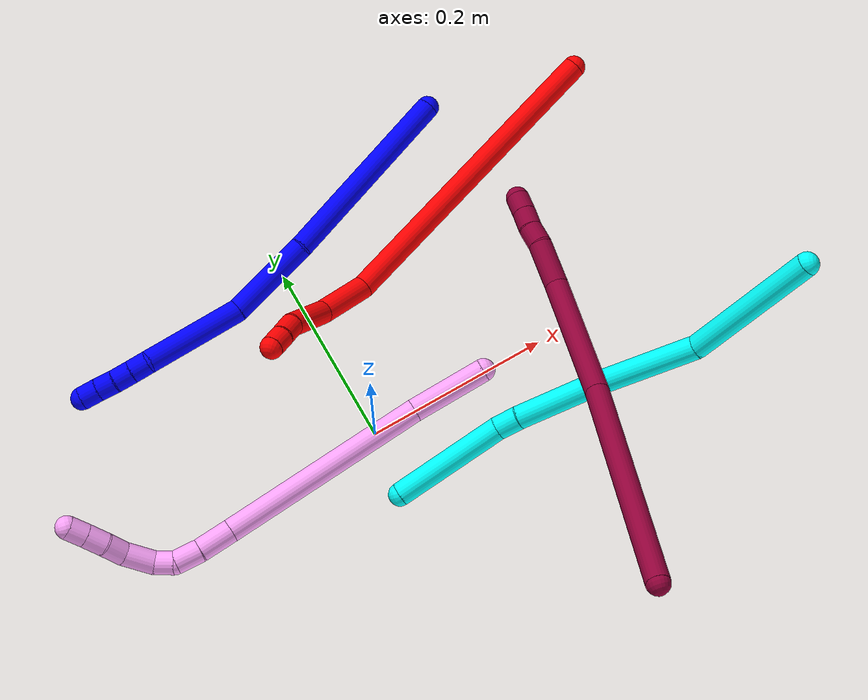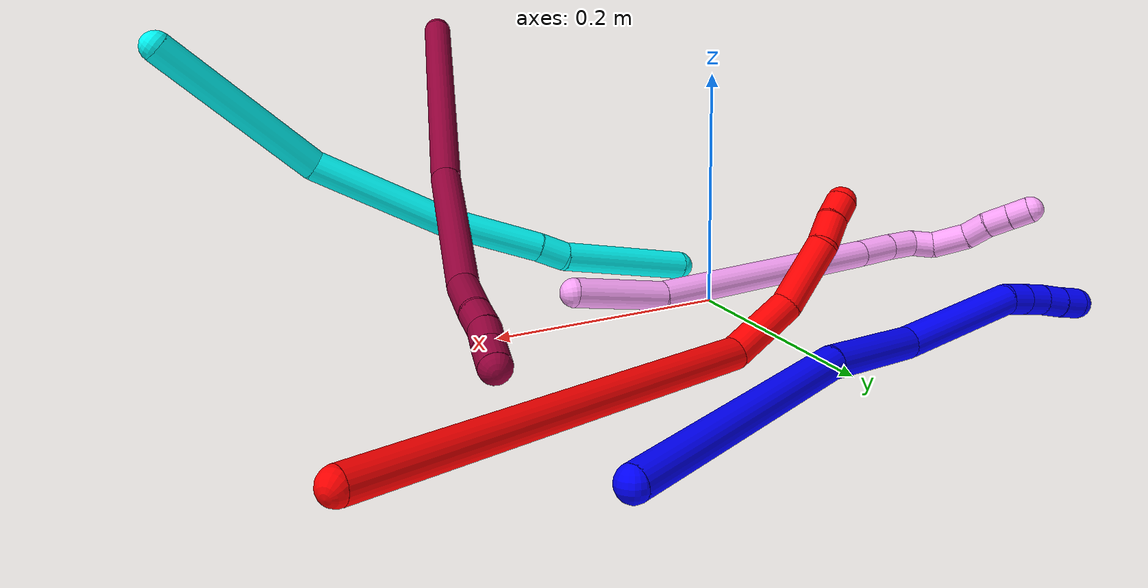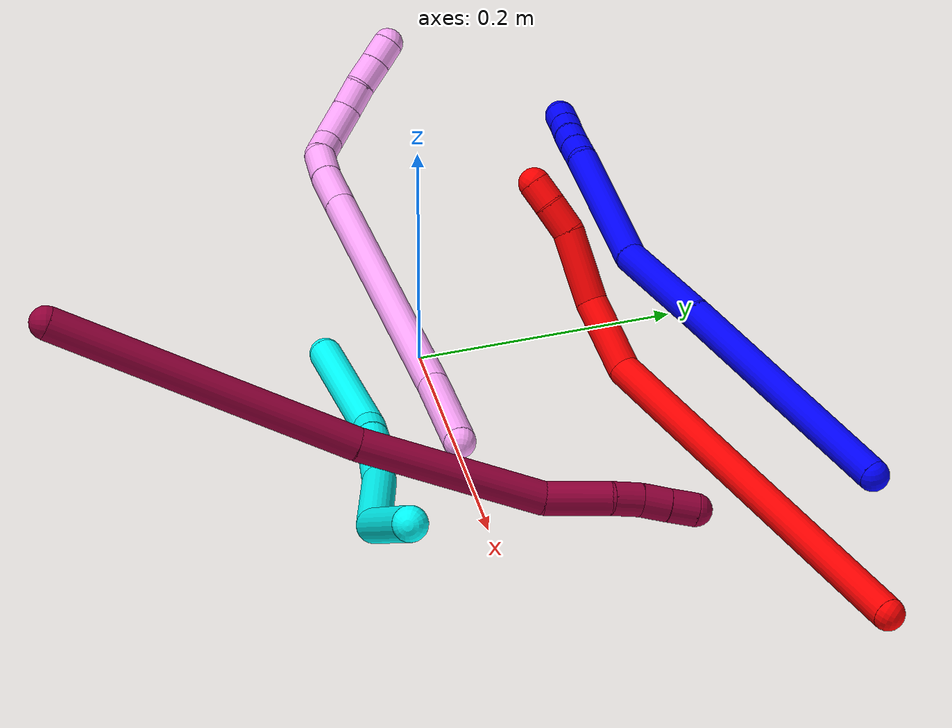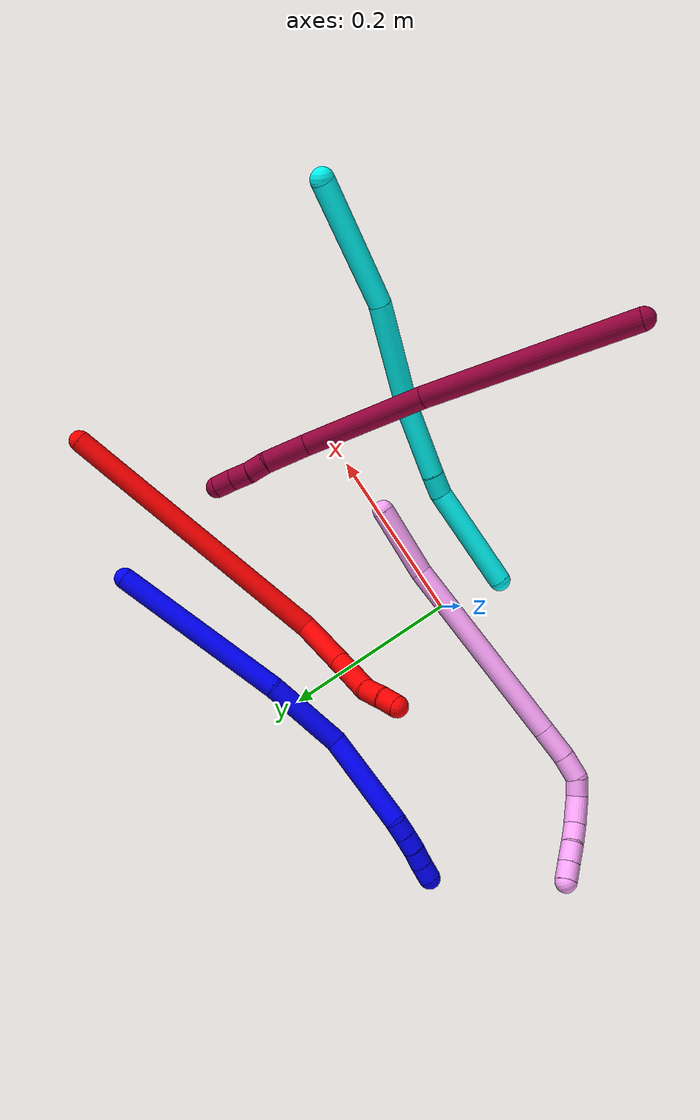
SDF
<sdf version="1.7">
 <world name="default">
  <model name="1">
   <static>0</static>
   <link name="1">
    <collision name="collision-cylinder-e_1_1_4">
     <pose>-0.07338 -0.075522 0.017185 1.34705 -0.758405 -0.615771</pose>
     <geometry><cylinder><radius>0.0125</radius><length>0.213388</length></cylinder></geometry>
     <surface>
      <friction><ode><mu>1.16</mu><mu2>1.16</mu2><slip1>0</slip1><slip2>0</slip2></ode></friction>
      <contact><ode><kp>1e+06</kp><kd>1</kd><max_vel>0</max_vel><min_depth>0.001</min_depth></ode></contact>
     </surface>
    </collision>
    <visual name="visual-cylinder-e_1_1_4">
     <pose>-0.07338 -0.075522 0.017185 1.34705 -0.758405 -0.615771</pose>
     <geometry><cylinder><radius>0.0125</radius><length>0.213388</length></cylinder></geometry>
     <material><ambient>0 0 1 1</ambient></material>
    </visual>
    <collision name="collision-cylinder-e_2_4_5">
     <pose>-0.182519 -0.182541 0.034421 1.56919 -0.848681 -0.847477</pose>
     <geometry><cylinder><radius>0.0125</radius><length>0.095305</length></cylinder></geometry>
     <surface>
      <friction><ode><mu>1.16</mu><mu2>1.16</mu2><slip1>0</slip1><slip2>0</slip2></ode></friction>
      <contact><ode><kp>1e+06</kp><kd>1</kd><max_vel>0</max_vel><min_depth>0.001</min_depth></ode></contact>
     </surface>
    </collision>
    <visual name="visual-cylinder-e_2_4_5">
     <pose>-0.182519 -0.182541 0.034421 1.56919 -0.848681 -0.847477</pose>
     <geometry><cylinder><radius>0.0125</radius><length>0.095305</length></cylinder></geometry>
     <material><ambient>0 0 1 1</ambient></material>
    </visual>
    <collision name="collision-cylinder-e_3_5_6">
     <pose>-0.266033 -0.239893 0.046618 1.13162 -1.03172 -0.691356</pose>
     <geometry><cylinder><radius>0.0125</radius><length>0.111293</length></cylinder></geometry>
     <surface>
      <friction><ode><mu>1.16</mu><mu2>1.16</mu2><slip1>0</slip1><slip2>0</slip2></ode></friction>
      <contact><ode><kp>1e+06</kp><kd>1</kd><max_vel>0</max_vel><min_depth>0.001</min_depth></ode></contact>
     </surface>
    </collision>
    <visual name="visual-cylinder-e_3_5_6">
     <pose>-0.266033 -0.239893 0.046618 1.13162 -1.03172 -0.691356</pose>
     <geometry><cylinder><radius>0.0125</radius><length>0.111293</length></cylinder></geometry>
     <material><ambient>0 0 1 1</ambient></material>
    </visual>
    <collision name="collision-cylinder-e_4_6_7">
     <pose>-0.322775 -0.270073 0.058021 1.74065 -1.11652 -1.27512</pose>
     <geometry><cylinder><radius>0.0125</radius><length>0.020003</length></cylinder></geometry>
     <surface>
      <friction><ode><mu>1.16</mu><mu2>1.16</mu2><slip1>0</slip1><slip2>0</slip2></ode></friction>
      <contact><ode><kp>1e+06</kp><kd>1</kd><max_vel>0</max_vel><min_depth>0.001</min_depth></ode></contact>
     </surface>
    </collision>
    <visual name="visual-cylinder-e_4_6_7">
     <pose>-0.322775 -0.270073 0.058021 1.74065 -1.11652 -1.27512</pose>
     <geometry><cylinder><radius>0.0125</radius><length>0.020003</length></cylinder></geometry>
     <material><ambient>0 0 1 1</ambient></material>
    </visual>
    <collision name="collision-cylinder-e_5_7_8">
     <pose>-0.340807 -0.278574 0.056358 1.78807 -1.12924 -1.33536</pose>
     <geometry><cylinder><radius>0.0125</radius><length>0.020009</length></cylinder></geometry>
     <surface>
      <friction><ode><mu>1.16</mu><mu2>1.16</mu2><slip1>0</slip1><slip2>0</slip2></ode></friction>
      <contact><ode><kp>1e+06</kp><kd>1</kd><max_vel>0</max_vel><min_depth>0.001</min_depth></ode></contact>
     </surface>
    </collision>
    <visual name="visual-cylinder-e_5_7_8">
     <pose>-0.340807 -0.278574 0.056358 1.78807 -1.12924 -1.33536</pose>
     <geometry><cylinder><radius>0.0125</radius><length>0.020009</length></cylinder></geometry>
     <material><ambient>0 0 1 1</ambient></material>
    </visual>
    <collision name="collision-cylinder-e_6_8_9">
     <pose>-0.359065 -0.286251 0.053744 2.02101 -1.17127 -1.6264</pose>
     <geometry><cylinder><radius>0.0125</radius><length>0.020001</length></cylinder></geometry>
     <surface>
      <friction><ode><mu>1.16</mu><mu2>1.16</mu2><slip1>0</slip1><slip2>0</slip2></ode></friction>
      <contact><ode><kp>1e+06</kp><kd>1</kd><max_vel>0</max_vel><min_depth>0.001</min_depth></ode></contact>
     </surface>
    </collision>
    <visual name="visual-cylinder-e_6_8_9">
     <pose>-0.359065 -0.286251 0.053744 2.02101 -1.17127 -1.6264</pose>
     <geometry><cylinder><radius>0.0125</radius><length>0.020001</length></cylinder></geometry>
     <material><ambient>0 0 1 1</ambient></material>
    </visual>
    <collision name="collision-cylinder-e_7_9_2">
     <pose>-0.377398 -0.293667 0.050816 1.87656 -1.14797 -1.44575</pose>
     <geometry><cylinder><radius>0.0125</radius><length>0.020002</length></cylinder></geometry>
     <surface>
      <friction><ode><mu>1.16</mu><mu2>1.16</mu2><slip1>0</slip1><slip2>0</slip2></ode></friction>
      <contact><ode><kp>1e+06</kp><kd>1</kd><max_vel>0</max_vel><min_depth>0.001</min_depth></ode></contact>
     </surface>
    </collision>
    <visual name="visual-cylinder-e_7_9_2">
     <pose>-0.377398 -0.293667 0.050816 1.87656 -1.14797 -1.44575</pose>
     <geometry><cylinder><radius>0.0125</radius><length>0.020002</length></cylinder></geometry>
     <material><ambient>0 0 1 1</ambient></material>
    </visual>
    <collision name="collision-sphere-2">
     <pose>-0.386518 -0.29758 0.04958 0 -0 0</pose>
     <geometry><sphere><radius>0.0125</radius></sphere></geometry>
     <surface>
      <friction><ode><mu>1.16</mu><mu2>1.16</mu2><slip1>0</slip1><slip2>0</slip2></ode></friction>
      <contact><ode><kp>1e+06</kp><kd>1</kd><max_vel>0</max_vel><min_depth>0.001</min_depth></ode></contact>
     </surface>
    </collision>
    <visual name="visual-sphere-2">
     <pose>-0.386518 -0.29758 0.04958 0 -0 0</pose>
     <geometry><sphere><radius>0.0125</radius></sphere></geometry>
     <material><ambient>0 0 1 1</ambient></material>
    </visual>
    <collision name="collision-sphere-9">
     <pose>-0.368278 -0.289753 0.052051 0 -0 0</pose>
     <geometry><sphere><radius>0.0125</radius></sphere></geometry>
     <surface>
      <friction><ode><mu>1.16</mu><mu2>1.16</mu2><slip1>0</slip1><slip2>0</slip2></ode></friction>
      <contact><ode><kp>1e+06</kp><kd>1</kd><max_vel>0</max_vel><min_depth>0.001</min_depth></ode></contact>
     </surface>
    </collision>
    <visual name="visual-sphere-9">
     <pose>-0.368278 -0.289753 0.052051 0 -0 0</pose>
     <geometry><sphere><radius>0.0125</radius></sphere></geometry>
     <material><ambient>0 0 1 1</ambient></material>
    </visual>
    <collision name="collision-sphere-4">
     <pose>-0.146761 -0.151044 0.034371 0 -0 0</pose>
     <geometry><sphere><radius>0.0125</radius></sphere></geometry>
     <surface>
      <friction><ode><mu>1.16</mu><mu2>1.16</mu2><slip1>0</slip1><slip2>0</slip2></ode></friction>
      <contact><ode><kp>1e+06</kp><kd>1</kd><max_vel>0</max_vel><min_depth>0.001</min_depth></ode></contact>
     </surface>
    </collision>
    <visual name="visual-sphere-4">
     <pose>-0.146761 -0.151044 0.034371 0 -0 0</pose>
     <geometry><sphere><radius>0.0125</radius></sphere></geometry>
     <material><ambient>0 0 1 1</ambient></material>
    </visual>
    <collision name="collision-sphere-1">
     <geometry><sphere><radius>0.0125</radius></sphere></geometry>
     <surface>
      <friction><ode><mu>1.16</mu><mu2>1.16</mu2><slip1>0</slip1><slip2>0</slip2></ode></friction>
      <contact><ode><kp>1e+06</kp><kd>1</kd><max_vel>0</max_vel><min_depth>0.001</min_depth></ode></contact>
     </surface>
    </collision>
    <visual name="visual-sphere-1">
     <geometry><sphere><radius>0.0125</radius></sphere></geometry>
     <material><ambient>0 0 1 1</ambient></material>
    </visual>
    <collision name="collision-sphere-8">
     <pose>-0.349852 -0.282748 0.055436 0 -0 0</pose>
     <geometry><sphere><radius>0.0125</radius></sphere></geometry>
     <surface>
      <friction><ode><mu>1.16</mu><mu2>1.16</mu2><slip1>0</slip1><slip2>0</slip2></ode></friction>
      <contact><ode><kp>1e+06</kp><kd>1</kd><max_vel>0</max_vel><min_depth>0.001</min_depth></ode></contact>
     </surface>
    </collision>
    <visual name="visual-sphere-8">
     <pose>-0.349852 -0.282748 0.055436 0 -0 0</pose>
     <geometry><sphere><radius>0.0125</radius></sphere></geometry>
     <material><ambient>0 0 1 1</ambient></material>
    </visual>
    <collision name="collision-sphere-5">
     <pose>-0.218278 -0.214038 0.034472 0 -0 0</pose>
     <geometry><sphere><radius>0.0125</radius></sphere></geometry>
     <surface>
      <friction><ode><mu>1.16</mu><mu2>1.16</mu2><slip1>0</slip1><slip2>0</slip2></ode></friction>
      <contact><ode><kp>1e+06</kp><kd>1</kd><max_vel>0</max_vel><min_depth>0.001</min_depth></ode></contact>
     </surface>
    </collision>
    <visual name="visual-sphere-5">
     <pose>-0.218278 -0.214038 0.034472 0 -0 0</pose>
     <geometry><sphere><radius>0.0125</radius></sphere></geometry>
     <material><ambient>0 0 1 1</ambient></material>
    </visual>
    <collision name="collision-sphere-6">
     <pose>-0.313788 -0.265748 0.058763 0 -0 0</pose>
     <geometry><sphere><radius>0.0125</radius></sphere></geometry>
     <surface>
      <friction><ode><mu>1.16</mu><mu2>1.16</mu2><slip1>0</slip1><slip2>0</slip2></ode></friction>
      <contact><ode><kp>1e+06</kp><kd>1</kd><max_vel>0</max_vel><min_depth>0.001</min_depth></ode></contact>
     </surface>
    </collision>
    <visual name="visual-sphere-6">
     <pose>-0.313788 -0.265748 0.058763 0 -0 0</pose>
     <geometry><sphere><radius>0.0125</radius></sphere></geometry>
     <material><ambient>0 0 1 1</ambient></material>
    </visual>
    <collision name="collision-sphere-7">
     <pose>-0.331762 -0.274399 0.05728 0 -0 0</pose>
     <geometry><sphere><radius>0.0125</radius></sphere></geometry>
     <surface>
      <friction><ode><mu>1.16</mu><mu2>1.16</mu2><slip1>0</slip1><slip2>0</slip2></ode></friction>
      <contact><ode><kp>1e+06</kp><kd>1</kd><max_vel>0</max_vel><min_depth>0.001</min_depth></ode></contact>
     </surface>
    </collision>
    <visual name="visual-sphere-7">
     <pose>-0.331762 -0.274399 0.05728 0 -0 0</pose>
     <geometry><sphere><radius>0.0125</radius></sphere></geometry>
     <material><ambient>0 0 1 1</ambient></material>
    </visual>
    <inertial>
     <pose>-0.181334 -0.165573 0.033031 0 -0 0</pose>
     <mass>0.5</mass>
     <inertia>
      <ixx>0.000113</ixx>
      <ixy>0</ixy>
      <ixz>0</ixz>
      <iyy>0.000165</iyy>
      <iyz>0</iyz>
      <izz>0.001418</izz>
     </inertia>
    </inertial>
   </link>
   <pose>0.229805 0.288501 0.011862 0.143446 -0.017795 -0.44871</pose>
  </model>
  <model name="2">
   <static>0</static>
   <link name="2">
    <collision name="collision-cylinder-e_1_1_4">
     <pose>-0.047929 0.07023 -0.145277 -2.6913 -0.288726 1.13114</pose>
     <geometry><cylinder><radius>0.0125</radius><length>0.336659</length></cylinder></geometry>
     <surface>
      <friction><ode><mu>1.16</mu><mu2>1.16</mu2><slip1>0</slip1><slip2>0</slip2></ode></friction>
      <contact><ode><kp>1e+06</kp><kd>1</kd><max_vel>0</max_vel><min_depth>0.001</min_depth></ode></contact>
     </surface>
    </collision>
    <visual name="visual-cylinder-e_1_1_4">
     <pose>-0.047929 0.07023 -0.145277 -2.6913 -0.288726 1.13114</pose>
     <geometry><cylinder><radius>0.0125</radius><length>0.336659</length></cylinder></geometry>
     <material><ambient>1 0 0 1</ambient></material>
    </visual>
    <collision name="collision-cylinder-e_2_4_5">
     <pose>-0.112304 0.140346 -0.316128 3.13714 -0.57149 -3.12645</pose>
     <geometry><cylinder><radius>0.0125</radius><length>0.060812</length></cylinder></geometry>
     <surface>
      <friction><ode><mu>1.16</mu><mu2>1.16</mu2><slip1>0</slip1><slip2>0</slip2></ode></friction>
      <contact><ode><kp>1e+06</kp><kd>1</kd><max_vel>0</max_vel><min_depth>0.001</min_depth></ode></contact>
     </surface>
    </collision>
    <visual name="visual-cylinder-e_2_4_5">
     <pose>-0.112304 0.140346 -0.316128 3.13714 -0.57149 -3.12645</pose>
     <geometry><cylinder><radius>0.0125</radius><length>0.060812</length></cylinder></geometry>
     <material><ambient>1 0 0 1</ambient></material>
    </visual>
    <collision name="collision-cylinder-e_3_5_6">
     <pose>-0.145373 0.130089 -0.362737 2.69229 -0.618623 -1.90008</pose>
     <geometry><cylinder><radius>0.0125</radius><length>0.05733</length></cylinder></geometry>
     <surface>
      <friction><ode><mu>1.16</mu><mu2>1.16</mu2><slip1>0</slip1><slip2>0</slip2></ode></friction>
      <contact><ode><kp>1e+06</kp><kd>1</kd><max_vel>0</max_vel><min_depth>0.001</min_depth></ode></contact>
     </surface>
    </collision>
    <visual name="visual-cylinder-e_3_5_6">
     <pose>-0.145373 0.130089 -0.362737 2.69229 -0.618623 -1.90008</pose>
     <geometry><cylinder><radius>0.0125</radius><length>0.05733</length></cylinder></geometry>
     <material><ambient>1 0 0 1</ambient></material>
    </visual>
    <collision name="collision-cylinder-e_4_6_7">
     <pose>-0.166071 0.115694 -0.394764 2.77242 -0.332878 -1.46534</pose>
     <geometry><cylinder><radius>0.0125</radius><length>0.024939</length></cylinder></geometry>
     <surface>
      <friction><ode><mu>1.16</mu><mu2>1.16</mu2><slip1>0</slip1><slip2>0</slip2></ode></friction>
      <contact><ode><kp>1e+06</kp><kd>1</kd><max_vel>0</max_vel><min_depth>0.001</min_depth></ode></contact>
     </surface>
    </collision>
    <visual name="visual-cylinder-e_4_6_7">
     <pose>-0.166071 0.115694 -0.394764 2.77242 -0.332878 -1.46534</pose>
     <geometry><cylinder><radius>0.0125</radius><length>0.024939</length></cylinder></geometry>
     <material><ambient>1 0 0 1</ambient></material>
    </visual>
    <collision name="collision-cylinder-e_5_7_2">
     <pose>-0.17367 0.109309 -0.415009 2.91513 -0.355331 -2.01245</pose>
     <geometry><cylinder><radius>0.0125</radius><length>0.02026</length></cylinder></geometry>
     <surface>
      <friction><ode><mu>1.16</mu><mu2>1.16</mu2><slip1>0</slip1><slip2>0</slip2></ode></friction>
      <contact><ode><kp>1e+06</kp><kd>1</kd><max_vel>0</max_vel><min_depth>0.001</min_depth></ode></contact>
     </surface>
    </collision>
    <visual name="visual-cylinder-e_5_7_2">
     <pose>-0.17367 0.109309 -0.415009 2.91513 -0.355331 -2.01245</pose>
     <geometry><cylinder><radius>0.0125</radius><length>0.02026</length></cylinder></geometry>
     <material><ambient>1 0 0 1</ambient></material>
    </visual>
    <collision name="collision-sphere-2">
     <pose>-0.177194 0.107176 -0.424264 0 -0 0</pose>
     <geometry><sphere><radius>0.0125</radius></sphere></geometry>
     <surface>
      <friction><ode><mu>1.16</mu><mu2>1.16</mu2><slip1>0</slip1><slip2>0</slip2></ode></friction>
      <contact><ode><kp>1e+06</kp><kd>1</kd><max_vel>0</max_vel><min_depth>0.001</min_depth></ode></contact>
     </surface>
    </collision>
    <visual name="visual-sphere-2">
     <pose>-0.177194 0.107176 -0.424264 0 -0 0</pose>
     <geometry><sphere><radius>0.0125</radius></sphere></geometry>
     <material><ambient>1 0 0 1</ambient></material>
    </visual>
    <collision name="collision-sphere-7">
     <pose>-0.170146 0.111441 -0.405755 0 -0 0</pose>
     <geometry><sphere><radius>0.0125</radius></sphere></geometry>
     <surface>
      <friction><ode><mu>1.16</mu><mu2>1.16</mu2><slip1>0</slip1><slip2>0</slip2></ode></friction>
      <contact><ode><kp>1e+06</kp><kd>1</kd><max_vel>0</max_vel><min_depth>0.001</min_depth></ode></contact>
     </surface>
    </collision>
    <visual name="visual-sphere-7">
     <pose>-0.170146 0.111441 -0.405755 0 -0 0</pose>
     <geometry><sphere><radius>0.0125</radius></sphere></geometry>
     <material><ambient>1 0 0 1</ambient></material>
    </visual>
    <collision name="collision-sphere-6">
     <pose>-0.161996 0.119946 -0.383773 0 -0 0</pose>
     <geometry><sphere><radius>0.0125</radius></sphere></geometry>
     <surface>
      <friction><ode><mu>1.16</mu><mu2>1.16</mu2><slip1>0</slip1><slip2>0</slip2></ode></friction>
      <contact><ode><kp>1e+06</kp><kd>1</kd><max_vel>0</max_vel><min_depth>0.001</min_depth></ode></contact>
     </surface>
    </collision>
    <visual name="visual-sphere-6">
     <pose>-0.161996 0.119946 -0.383773 0 -0 0</pose>
     <geometry><sphere><radius>0.0125</radius></sphere></geometry>
     <material><ambient>1 0 0 1</ambient></material>
    </visual>
    <collision name="collision-sphere-5">
     <pose>-0.12875 0.140232 -0.341702 0 -0 0</pose>
     <geometry><sphere><radius>0.0125</radius></sphere></geometry>
     <surface>
      <friction><ode><mu>1.16</mu><mu2>1.16</mu2><slip1>0</slip1><slip2>0</slip2></ode></friction>
      <contact><ode><kp>1e+06</kp><kd>1</kd><max_vel>0</max_vel><min_depth>0.001</min_depth></ode></contact>
     </surface>
    </collision>
    <visual name="visual-sphere-5">
     <pose>-0.12875 0.140232 -0.341702 0 -0 0</pose>
     <geometry><sphere><radius>0.0125</radius></sphere></geometry>
     <material><ambient>1 0 0 1</ambient></material>
    </visual>
    <collision name="collision-sphere-1">
     <geometry><sphere><radius>0.0125</radius></sphere></geometry>
     <surface>
      <friction><ode><mu>1.16</mu><mu2>1.16</mu2><slip1>0</slip1><slip2>0</slip2></ode></friction>
      <contact><ode><kp>1e+06</kp><kd>1</kd><max_vel>0</max_vel><min_depth>0.001</min_depth></ode></contact>
     </surface>
    </collision>
    <visual name="visual-sphere-1">
     <geometry><sphere><radius>0.0125</radius></sphere></geometry>
     <material><ambient>1 0 0 1</ambient></material>
    </visual>
    <collision name="collision-sphere-4">
     <pose>-0.095857 0.14046 -0.290554 0 -0 0</pose>
     <geometry><sphere><radius>0.0125</radius></sphere></geometry>
     <surface>
      <friction><ode><mu>1.16</mu><mu2>1.16</mu2><slip1>0</slip1><slip2>0</slip2></ode></friction>
      <contact><ode><kp>1e+06</kp><kd>1</kd><max_vel>0</max_vel><min_depth>0.001</min_depth></ode></contact>
     </surface>
    </collision>
    <visual name="visual-sphere-4">
     <pose>-0.095857 0.14046 -0.290554 0 -0 0</pose>
     <geometry><sphere><radius>0.0125</radius></sphere></geometry>
     <material><ambient>1 0 0 1</ambient></material>
    </visual>
    <inertial>
     <pose>-0.077919 0.089472 -0.214364 0 -0 0</pose>
     <mass>0.5</mass>
     <inertia>
      <ixx>0.004018</ixx>
      <ixy>0</ixy>
      <ixz>0</ixz>
      <iyy>0.001926</iyy>
      <iyz>0</iyz>
      <izz>-0.000426</izz>
     </inertia>
    </inertial>
   </link>
   <pose>0.388502 0.243383 0.029476 -1.81866 0.443798 -0.923253</pose>
  </model>
  <model name="3">
   <static>0</static>
   <link name="3">
    <collision name="collision-cylinder-e_1_1_4">
     <pose>-0.000241 -0.023126 -0.071357 2.82818 -0.003211 -0.020323</pose>
     <geometry><cylinder><radius>0.0125</radius><length>0.150022</length></cylinder></geometry>
     <surface>
      <friction><ode><mu>1.16</mu><mu2>1.16</mu2><slip1>0</slip1><slip2>0</slip2></ode></friction>
      <contact><ode><kp>1e+06</kp><kd>1</kd><max_vel>0</max_vel><min_depth>0.001</min_depth></ode></contact>
     </surface>
    </collision>
    <visual name="visual-cylinder-e_1_1_4">
     <pose>-0.000241 -0.023126 -0.071357 2.82818 -0.003211 -0.020323</pose>
     <geometry><cylinder><radius>0.0125</radius><length>0.150022</length></cylinder></geometry>
     <material><ambient>0.003922 1 0.996078 1</ambient></material>
    </visual>
    <collision name="collision-cylinder-e_2_4_5">
     <pose>-0.011422 -0.047608 -0.199377 3.11767 -0.190681 -2.89268</pose>
     <geometry><cylinder><radius>0.0125</radius><length>0.115451</length></cylinder></geometry>
     <surface>
      <friction><ode><mu>1.16</mu><mu2>1.16</mu2><slip1>0</slip1><slip2>0</slip2></ode></friction>
      <contact><ode><kp>1e+06</kp><kd>1</kd><max_vel>0</max_vel><min_depth>0.001</min_depth></ode></contact>
     </surface>
    </collision>
    <visual name="visual-cylinder-e_2_4_5">
     <pose>-0.011422 -0.047608 -0.199377 3.11767 -0.190681 -2.89268</pose>
     <geometry><cylinder><radius>0.0125</radius><length>0.115451</length></cylinder></geometry>
     <material><ambient>0.003922 1 0.996078 1</ambient></material>
    </visual>
    <collision name="collision-cylinder-e_3_5_6">
     <pose>-0.036616 -0.051373 -0.296524 3.08216 -0.337964 -2.79658</pose>
     <geometry><cylinder><radius>0.0125</radius><length>0.085975</length></cylinder></geometry>
     <surface>
      <friction><ode><mu>1.16</mu><mu2>1.16</mu2><slip1>0</slip1><slip2>0</slip2></ode></friction>
      <contact><ode><kp>1e+06</kp><kd>1</kd><max_vel>0</max_vel><min_depth>0.001</min_depth></ode></contact>
     </surface>
    </collision>
    <visual name="visual-cylinder-e_3_5_6">
     <pose>-0.036616 -0.051373 -0.296524 3.08216 -0.337964 -2.79658</pose>
     <geometry><cylinder><radius>0.0125</radius><length>0.085975</length></cylinder></geometry>
     <material><ambient>0.003922 1 0.996078 1</ambient></material>
    </visual>
    <collision name="collision-cylinder-e_4_6_7">
     <pose>-0.054334 -0.055383 -0.349259 3.01167 -0.273398 -2.2581</pose>
     <geometry><cylinder><radius>0.0125</radius><length>0.025663</length></cylinder></geometry>
     <surface>
      <friction><ode><mu>1.16</mu><mu2>1.16</mu2><slip1>0</slip1><slip2>0</slip2></ode></friction>
      <contact><ode><kp>1e+06</kp><kd>1</kd><max_vel>0</max_vel><min_depth>0.001</min_depth></ode></contact>
     </surface>
    </collision>
    <visual name="visual-cylinder-e_4_6_7">
     <pose>-0.054334 -0.055383 -0.349259 3.01167 -0.273398 -2.2581</pose>
     <geometry><cylinder><radius>0.0125</radius><length>0.025663</length></cylinder></geometry>
     <material><ambient>0.003922 1 0.996078 1</ambient></material>
    </visual>
    <collision name="collision-cylinder-e_5_7_2">
     <pose>-0.088678 -0.069729 -0.413079 2.89929 -0.526554 -2.29307</pose>
     <geometry><cylinder><radius>0.0125</radius><length>0.122889</length></cylinder></geometry>
     <surface>
      <friction><ode><mu>1.16</mu><mu2>1.16</mu2><slip1>0</slip1><slip2>0</slip2></ode></friction>
      <contact><ode><kp>1e+06</kp><kd>1</kd><max_vel>0</max_vel><min_depth>0.001</min_depth></ode></contact>
     </surface>
    </collision>
    <visual name="visual-cylinder-e_5_7_2">
     <pose>-0.088678 -0.069729 -0.413079 2.89929 -0.526554 -2.29307</pose>
     <geometry><cylinder><radius>0.0125</radius><length>0.122889</length></cylinder></geometry>
     <material><ambient>0.003922 1 0.996078 1</ambient></material>
    </visual>
    <collision name="collision-sphere-2">
     <pose>-0.119557 -0.082475 -0.464649 0 -0 0</pose>
     <geometry><sphere><radius>0.0125</radius></sphere></geometry>
     <surface>
      <friction><ode><mu>1.16</mu><mu2>1.16</mu2><slip1>0</slip1><slip2>0</slip2></ode></friction>
      <contact><ode><kp>1e+06</kp><kd>1</kd><max_vel>0</max_vel><min_depth>0.001</min_depth></ode></contact>
     </surface>
    </collision>
    <visual name="visual-sphere-2">
     <pose>-0.119557 -0.082475 -0.464649 0 -0 0</pose>
     <geometry><sphere><radius>0.0125</radius></sphere></geometry>
     <material><ambient>0.003922 1 0.996078 1</ambient></material>
    </visual>
    <collision name="collision-sphere-7">
     <pose>-0.057798 -0.056983 -0.36151 0 -0 0</pose>
     <geometry><sphere><radius>0.0125</radius></sphere></geometry>
     <surface>
      <friction><ode><mu>1.16</mu><mu2>1.16</mu2><slip1>0</slip1><slip2>0</slip2></ode></friction>
      <contact><ode><kp>1e+06</kp><kd>1</kd><max_vel>0</max_vel><min_depth>0.001</min_depth></ode></contact>
     </surface>
    </collision>
    <visual name="visual-sphere-7">
     <pose>-0.057798 -0.056983 -0.36151 0 -0 0</pose>
     <geometry><sphere><radius>0.0125</radius></sphere></geometry>
     <material><ambient>0.003922 1 0.996078 1</ambient></material>
    </visual>
    <collision name="collision-sphere-6">
     <pose>-0.050869 -0.053782 -0.337008 0 -0 0</pose>
     <geometry><sphere><radius>0.0125</radius></sphere></geometry>
     <surface>
      <friction><ode><mu>1.16</mu><mu2>1.16</mu2><slip1>0</slip1><slip2>0</slip2></ode></friction>
      <contact><ode><kp>1e+06</kp><kd>1</kd><max_vel>0</max_vel><min_depth>0.001</min_depth></ode></contact>
     </surface>
    </collision>
    <visual name="visual-sphere-6">
     <pose>-0.050869 -0.053782 -0.337008 0 -0 0</pose>
     <geometry><sphere><radius>0.0125</radius></sphere></geometry>
     <material><ambient>0.003922 1 0.996078 1</ambient></material>
    </visual>
    <collision name="collision-sphere-5">
     <pose>-0.022363 -0.048964 -0.25604 0 -0 0</pose>
     <geometry><sphere><radius>0.0125</radius></sphere></geometry>
     <surface>
      <friction><ode><mu>1.16</mu><mu2>1.16</mu2><slip1>0</slip1><slip2>0</slip2></ode></friction>
      <contact><ode><kp>1e+06</kp><kd>1</kd><max_vel>0</max_vel><min_depth>0.001</min_depth></ode></contact>
     </surface>
    </collision>
    <visual name="visual-sphere-5">
     <pose>-0.022363 -0.048964 -0.25604 0 -0 0</pose>
     <geometry><sphere><radius>0.0125</radius></sphere></geometry>
     <material><ambient>0.003922 1 0.996078 1</ambient></material>
    </visual>
    <collision name="collision-sphere-1">
     <geometry><sphere><radius>0.0125</radius></sphere></geometry>
     <surface>
      <friction><ode><mu>1.16</mu><mu2>1.16</mu2><slip1>0</slip1><slip2>0</slip2></ode></friction>
      <contact><ode><kp>1e+06</kp><kd>1</kd><max_vel>0</max_vel><min_depth>0.001</min_depth></ode></contact>
     </surface>
    </collision>
    <visual name="visual-sphere-1">
     <geometry><sphere><radius>0.0125</radius></sphere></geometry>
     <material><ambient>0.003922 1 0.996078 1</ambient></material>
    </visual>
    <collision name="collision-sphere-4">
     <pose>-0.000482 -0.046252 -0.142714 0 -0 0</pose>
     <geometry><sphere><radius>0.0125</radius></sphere></geometry>
     <surface>
      <friction><ode><mu>1.16</mu><mu2>1.16</mu2><slip1>0</slip1><slip2>0</slip2></ode></friction>
      <contact><ode><kp>1e+06</kp><kd>1</kd><max_vel>0</max_vel><min_depth>0.001</min_depth></ode></contact>
     </surface>
    </collision>
    <visual name="visual-sphere-4">
     <pose>-0.000482 -0.046252 -0.142714 0 -0 0</pose>
     <geometry><sphere><radius>0.0125</radius></sphere></geometry>
     <material><ambient>0.003922 1 0.996078 1</ambient></material>
    </visual>
    <inertial>
     <pose>-0.03359 -0.046746 -0.237886 0 -0 0</pose>
     <mass>0.5</mass>
     <inertia>
      <ixx>-0.000152</ixx>
      <ixy>0</ixy>
      <ixz>0</ixz>
      <iyy>-0.00014</iyy>
      <iyz>0</iyz>
      <izz>0.000217</izz>
     </inertia>
    </inertial>
   </link>
   <pose>0.420119 -0.11472 0.234319 0.55339 0.792483 0.314697</pose>
  </model>
  <model name="4">
   <static>0</static>
   <link name="4">
    <collision name="collision-cylinder-e_1_1_4">
     <pose>-0.010444 0.00587 0.040193 -0.145026 -0.25167 0.018378</pose>
     <geometry><cylinder><radius>0.0125</radius><length>0.083882</length></cylinder></geometry>
     <surface>
      <friction><ode><mu>1.16</mu><mu2>1.16</mu2><slip1>0</slip1><slip2>0</slip2></ode></friction>
      <contact><ode><kp>1e+06</kp><kd>1</kd><max_vel>0</max_vel><min_depth>0.001</min_depth></ode></contact>
     </surface>
    </collision>
    <visual name="visual-cylinder-e_1_1_4">
     <pose>-0.010444 0.00587 0.040193 -0.145026 -0.25167 0.018378</pose>
     <geometry><cylinder><radius>0.0125</radius><length>0.083882</length></cylinder></geometry>
     <material><ambient>1 0.65098 0.996078 1</ambient></material>
    </visual>
    <collision name="collision-cylinder-e_2_4_5">
     <pose>-0.051831 0.003885 0.190348 0.07132 -0.273641 -0.009824</pose>
     <geometry><cylinder><radius>0.0125</radius><length>0.229004</length></cylinder></geometry>
     <surface>
      <friction><ode><mu>1.16</mu><mu2>1.16</mu2><slip1>0</slip1><slip2>0</slip2></ode></friction>
      <contact><ode><kp>1e+06</kp><kd>1</kd><max_vel>0</max_vel><min_depth>0.001</min_depth></ode></contact>
     </surface>
    </collision>
    <visual name="visual-cylinder-e_2_4_5">
     <pose>-0.051831 0.003885 0.190348 0.07132 -0.273641 -0.009824</pose>
     <geometry><cylinder><radius>0.0125</radius><length>0.229004</length></cylinder></geometry>
     <material><ambient>1 0.65098 0.996078 1</ambient></material>
    </visual>
    <collision name="collision-cylinder-e_3_5_6">
     <pose>-0.08763 -0.005558 0.318303 0.087952 -0.262611 -0.011623</pose>
     <geometry><cylinder><radius>0.0125</radius><length>0.037407</length></cylinder></geometry>
     <surface>
      <friction><ode><mu>1.16</mu><mu2>1.16</mu2><slip1>0</slip1><slip2>0</slip2></ode></friction>
      <contact><ode><kp>1e+06</kp><kd>1</kd><max_vel>0</max_vel><min_depth>0.001</min_depth></ode></contact>
     </surface>
    </collision>
    <visual name="visual-cylinder-e_3_5_6">
     <pose>-0.08763 -0.005558 0.318303 0.087952 -0.262611 -0.011623</pose>
     <geometry><cylinder><radius>0.0125</radius><length>0.037407</length></cylinder></geometry>
     <material><ambient>1 0.65098 0.996078 1</ambient></material>
    </visual>
    <collision name="collision-cylinder-e_4_6_7">
     <pose>-0.094687 -0.007768 0.350234 0.044754 -0.156491 -0.00351</pose>
     <geometry><cylinder><radius>0.0125</radius><length>0.028251</length></cylinder></geometry>
     <surface>
      <friction><ode><mu>1.16</mu><mu2>1.16</mu2><slip1>0</slip1><slip2>0</slip2></ode></friction>
      <contact><ode><kp>1e+06</kp><kd>1</kd><max_vel>0</max_vel><min_depth>0.001</min_depth></ode></contact>
     </surface>
    </collision>
    <visual name="visual-cylinder-e_4_6_7">
     <pose>-0.094687 -0.007768 0.350234 0.044754 -0.156491 -0.00351</pose>
     <geometry><cylinder><radius>0.0125</radius><length>0.028251</length></cylinder></geometry>
     <material><ambient>1 0.65098 0.996078 1</ambient></material>
    </visual>
    <collision name="collision-cylinder-e_5_7_8">
     <pose>-0.094052 -0.005924 0.374203 -0.241285 0.267961 -0.032678</pose>
     <geometry><cylinder><radius>0.0125</radius><length>0.021425</length></cylinder></geometry>
     <surface>
      <friction><ode><mu>1.16</mu><mu2>1.16</mu2><slip1>0</slip1><slip2>0</slip2></ode></friction>
      <contact><ode><kp>1e+06</kp><kd>1</kd><max_vel>0</max_vel><min_depth>0.001</min_depth></ode></contact>
     </surface>
    </collision>
    <visual name="visual-cylinder-e_5_7_8">
     <pose>-0.094052 -0.005924 0.374203 -0.241285 0.267961 -0.032678</pose>
     <geometry><cylinder><radius>0.0125</radius><length>0.021425</length></cylinder></geometry>
     <material><ambient>1 0.65098 0.996078 1</ambient></material>
    </visual>
    <collision name="collision-cylinder-e_6_8_9">
     <pose>-0.081644 -0.005326 0.39804 0.134638 0.601956 0.04185</pose>
     <geometry><cylinder><radius>0.0125</radius><length>0.033805</length></cylinder></geometry>
     <surface>
      <friction><ode><mu>1.16</mu><mu2>1.16</mu2><slip1>0</slip1><slip2>0</slip2></ode></friction>
      <contact><ode><kp>1e+06</kp><kd>1</kd><max_vel>0</max_vel><min_depth>0.001</min_depth></ode></contact>
     </surface>
    </collision>
    <visual name="visual-cylinder-e_6_8_9">
     <pose>-0.081644 -0.005326 0.39804 0.134638 0.601956 0.04185</pose>
     <geometry><cylinder><radius>0.0125</radius><length>0.033805</length></cylinder></geometry>
     <material><ambient>1 0.65098 0.996078 1</ambient></material>
    </visual>
    <collision name="collision-cylinder-e_7_9_10">
     <pose>-0.064168 -0.011121 0.419311 0.484017 0.753011 0.194573</pose>
     <geometry><cylinder><radius>0.0125</radius><length>0.02312</length></cylinder></geometry>
     <surface>
      <friction><ode><mu>1.16</mu><mu2>1.16</mu2><slip1>0</slip1><slip2>0</slip2></ode></friction>
      <contact><ode><kp>1e+06</kp><kd>1</kd><max_vel>0</max_vel><min_depth>0.001</min_depth></ode></contact>
     </surface>
    </collision>
    <visual name="visual-cylinder-e_7_9_10">
     <pose>-0.064168 -0.011121 0.419311 0.484017 0.753011 0.194573</pose>
     <geometry><cylinder><radius>0.0125</radius><length>0.02312</length></cylinder></geometry>
     <material><ambient>1 0.65098 0.996078 1</ambient></material>
    </visual>
    <collision name="collision-cylinder-e_8_10_11">
     <pose>-0.048537 -0.017091 0.434908 0.246443 0.744553 0.096647</pose>
     <geometry><cylinder><radius>0.0125</radius><length>0.022801</length></cylinder></geometry>
     <surface>
      <friction><ode><mu>1.16</mu><mu2>1.16</mu2><slip1>0</slip1><slip2>0</slip2></ode></friction>
      <contact><ode><kp>1e+06</kp><kd>1</kd><max_vel>0</max_vel><min_depth>0.001</min_depth></ode></contact>
     </surface>
    </collision>
    <visual name="visual-cylinder-e_8_10_11">
     <pose>-0.048537 -0.017091 0.434908 0.246443 0.744553 0.096647</pose>
     <geometry><cylinder><radius>0.0125</radius><length>0.022801</length></cylinder></geometry>
     <material><ambient>1 0.65098 0.996078 1</ambient></material>
    </visual>
    <collision name="collision-cylinder-e_9_11_2">
     <pose>-0.034076 -0.021043 0.450391 0.253713 0.725386 0.096723</pose>
     <geometry><cylinder><radius>0.0125</radius><length>0.020304</length></cylinder></geometry>
     <surface>
      <friction><ode><mu>1.16</mu><mu2>1.16</mu2><slip1>0</slip1><slip2>0</slip2></ode></friction>
      <contact><ode><kp>1e+06</kp><kd>1</kd><max_vel>0</max_vel><min_depth>0.001</min_depth></ode></contact>
     </surface>
    </collision>
    <visual name="visual-cylinder-e_9_11_2">
     <pose>-0.034076 -0.021043 0.450391 0.253713 0.725386 0.096723</pose>
     <geometry><cylinder><radius>0.0125</radius><length>0.020304</length></cylinder></geometry>
     <material><ambient>1 0.65098 0.996078 1</ambient></material>
    </visual>
    <collision name="collision-sphere-2">
     <pose>-0.027341 -0.02295 0.457744 0 -0 0</pose>
     <geometry><sphere><radius>0.0125</radius></sphere></geometry>
     <surface>
      <friction><ode><mu>1.16</mu><mu2>1.16</mu2><slip1>0</slip1><slip2>0</slip2></ode></friction>
      <contact><ode><kp>1e+06</kp><kd>1</kd><max_vel>0</max_vel><min_depth>0.001</min_depth></ode></contact>
     </surface>
    </collision>
    <visual name="visual-sphere-2">
     <pose>-0.027341 -0.02295 0.457744 0 -0 0</pose>
     <geometry><sphere><radius>0.0125</radius></sphere></geometry>
     <material><ambient>1 0.65098 0.996078 1</ambient></material>
    </visual>
    <collision name="collision-sphere-11">
     <pose>-0.040811 -0.019137 0.443038 0 -0 0</pose>
     <geometry><sphere><radius>0.0125</radius></sphere></geometry>
     <surface>
      <friction><ode><mu>1.16</mu><mu2>1.16</mu2><slip1>0</slip1><slip2>0</slip2></ode></friction>
      <contact><ode><kp>1e+06</kp><kd>1</kd><max_vel>0</max_vel><min_depth>0.001</min_depth></ode></contact>
     </surface>
    </collision>
    <visual name="visual-sphere-11">
     <pose>-0.040811 -0.019137 0.443038 0 -0 0</pose>
     <geometry><sphere><radius>0.0125</radius></sphere></geometry>
     <material><ambient>1 0.65098 0.996078 1</ambient></material>
    </visual>
    <collision name="collision-sphere-10">
     <pose>-0.056263 -0.015046 0.426777 0 -0 0</pose>
     <geometry><sphere><radius>0.0125</radius></sphere></geometry>
     <surface>
      <friction><ode><mu>1.16</mu><mu2>1.16</mu2><slip1>0</slip1><slip2>0</slip2></ode></friction>
      <contact><ode><kp>1e+06</kp><kd>1</kd><max_vel>0</max_vel><min_depth>0.001</min_depth></ode></contact>
     </surface>
    </collision>
    <visual name="visual-sphere-10">
     <pose>-0.056263 -0.015046 0.426777 0 -0 0</pose>
     <geometry><sphere><radius>0.0125</radius></sphere></geometry>
     <material><ambient>1 0.65098 0.996078 1</ambient></material>
    </visual>
    <collision name="collision-sphere-9">
     <pose>-0.072073 -0.007196 0.411846 0 -0 0</pose>
     <geometry><sphere><radius>0.0125</radius></sphere></geometry>
     <surface>
      <friction><ode><mu>1.16</mu><mu2>1.16</mu2><slip1>0</slip1><slip2>0</slip2></ode></friction>
      <contact><ode><kp>1e+06</kp><kd>1</kd><max_vel>0</max_vel><min_depth>0.001</min_depth></ode></contact>
     </surface>
    </collision>
    <visual name="visual-sphere-9">
     <pose>-0.072073 -0.007196 0.411846 0 -0 0</pose>
     <geometry><sphere><radius>0.0125</radius></sphere></geometry>
     <material><ambient>1 0.65098 0.996078 1</ambient></material>
    </visual>
    <collision name="collision-sphere-4">
     <pose>-0.020888 0.011741 0.080387 0 -0 0</pose>
     <geometry><sphere><radius>0.0125</radius></sphere></geometry>
     <surface>
      <friction><ode><mu>1.16</mu><mu2>1.16</mu2><slip1>0</slip1><slip2>0</slip2></ode></friction>
      <contact><ode><kp>1e+06</kp><kd>1</kd><max_vel>0</max_vel><min_depth>0.001</min_depth></ode></contact>
     </surface>
    </collision>
    <visual name="visual-sphere-4">
     <pose>-0.020888 0.011741 0.080387 0 -0 0</pose>
     <geometry><sphere><radius>0.0125</radius></sphere></geometry>
     <material><ambient>1 0.65098 0.996078 1</ambient></material>
    </visual>
    <collision name="collision-sphere-1">
     <geometry><sphere><radius>0.0125</radius></sphere></geometry>
     <surface>
      <friction><ode><mu>1.16</mu><mu2>1.16</mu2><slip1>0</slip1><slip2>0</slip2></ode></friction>
      <contact><ode><kp>1e+06</kp><kd>1</kd><max_vel>0</max_vel><min_depth>0.001</min_depth></ode></contact>
     </surface>
    </collision>
    <visual name="visual-sphere-1">
     <geometry><sphere><radius>0.0125</radius></sphere></geometry>
     <material><ambient>1 0.65098 0.996078 1</ambient></material>
    </visual>
    <collision name="collision-sphere-8">
     <pose>-0.091216 -0.003456 0.384234 0 -0 0</pose>
     <geometry><sphere><radius>0.0125</radius></sphere></geometry>
     <surface>
      <friction><ode><mu>1.16</mu><mu2>1.16</mu2><slip1>0</slip1><slip2>0</slip2></ode></friction>
      <contact><ode><kp>1e+06</kp><kd>1</kd><max_vel>0</max_vel><min_depth>0.001</min_depth></ode></contact>
     </surface>
    </collision>
    <visual name="visual-sphere-8">
     <pose>-0.091216 -0.003456 0.384234 0 -0 0</pose>
     <geometry><sphere><radius>0.0125</radius></sphere></geometry>
     <material><ambient>1 0.65098 0.996078 1</ambient></material>
    </visual>
    <collision name="collision-sphere-5">
     <pose>-0.082774 -0.003971 0.30031 0 -0 0</pose>
     <geometry><sphere><radius>0.0125</radius></sphere></geometry>
     <surface>
      <friction><ode><mu>1.16</mu><mu2>1.16</mu2><slip1>0</slip1><slip2>0</slip2></ode></friction>
      <contact><ode><kp>1e+06</kp><kd>1</kd><max_vel>0</max_vel><min_depth>0.001</min_depth></ode></contact>
     </surface>
    </collision>
    <visual name="visual-sphere-5">
     <pose>-0.082774 -0.003971 0.30031 0 -0 0</pose>
     <geometry><sphere><radius>0.0125</radius></sphere></geometry>
     <material><ambient>1 0.65098 0.996078 1</ambient></material>
    </visual>
    <collision name="collision-sphere-6">
     <pose>-0.092485 -0.007144 0.336295 0 -0 0</pose>
     <geometry><sphere><radius>0.0125</radius></sphere></geometry>
     <surface>
      <friction><ode><mu>1.16</mu><mu2>1.16</mu2><slip1>0</slip1><slip2>0</slip2></ode></friction>
      <contact><ode><kp>1e+06</kp><kd>1</kd><max_vel>0</max_vel><min_depth>0.001</min_depth></ode></contact>
     </surface>
    </collision>
    <visual name="visual-sphere-6">
     <pose>-0.092485 -0.007144 0.336295 0 -0 0</pose>
     <geometry><sphere><radius>0.0125</radius></sphere></geometry>
     <material><ambient>1 0.65098 0.996078 1</ambient></material>
    </visual>
    <collision name="collision-sphere-7">
     <pose>-0.096888 -0.008393 0.364173 0 -0 0</pose>
     <geometry><sphere><radius>0.0125</radius></sphere></geometry>
     <surface>
      <friction><ode><mu>1.16</mu><mu2>1.16</mu2><slip1>0</slip1><slip2>0</slip2></ode></friction>
      <contact><ode><kp>1e+06</kp><kd>1</kd><max_vel>0</max_vel><min_depth>0.001</min_depth></ode></contact>
     </surface>
    </collision>
    <visual name="visual-sphere-7">
     <pose>-0.096888 -0.008393 0.364173 0 -0 0</pose>
     <geometry><sphere><radius>0.0125</radius></sphere></geometry>
     <material><ambient>1 0.65098 0.996078 1</ambient></material>
    </visual>
    <inertial>
     <pose>-0.053512 -0.000853 0.237984 0 -0 0</pose>
     <mass>0.5</mass>
     <inertia>
      <ixx>0.00103</ixx>
      <ixy>0</ixy>
      <ixz>0</ixz>
      <iyy>0.001069</iyy>
      <iyz>0</iyz>
      <izz>0.000381</izz>
     </inertia>
    </inertial>
   </link>
   <pose>0.129547 -0.003022 0.026843 -1.52989 -0.36509 1.34838</pose>
  </model>
  <model name="8">
   <static>0</static>
   <link name="8">
    <collision name="collision-cylinder-e_1_1_4">
     <pose>-0.042926 0.001062 -0.112532 -3.13216 -0.364404 3.09041</pose>
     <geometry><cylinder><radius>0.0125</radius><length>0.240893</length></cylinder></geometry>
     <surface>
      <friction><ode><mu>1.16</mu><mu2>1.16</mu2><slip1>0</slip1><slip2>0</slip2></ode></friction>
      <contact><ode><kp>1e+06</kp><kd>1</kd><max_vel>0</max_vel><min_depth>0.001</min_depth></ode></contact>
     </surface>
    </collision>
    <visual name="visual-cylinder-e_1_1_4">
     <pose>-0.042926 0.001062 -0.112532 -3.13216 -0.364404 3.09041</pose>
     <geometry><cylinder><radius>0.0125</radius><length>0.240893</length></cylinder></geometry>
     <material><ambient>0.584314 0 0.227451 1</ambient></material>
    </visual>
    <collision name="collision-cylinder-e_2_4_5">
     <pose>-0.106272 0.005577 -0.294234 -3.09169 -0.286725 2.79923</pose>
     <geometry><cylinder><radius>0.0125</radius><length>0.144407</length></cylinder></geometry>
     <surface>
      <friction><ode><mu>1.16</mu><mu2>1.16</mu2><slip1>0</slip1><slip2>0</slip2></ode></friction>
      <contact><ode><kp>1e+06</kp><kd>1</kd><max_vel>0</max_vel><min_depth>0.001</min_depth></ode></contact>
     </surface>
    </collision>
    <visual name="visual-cylinder-e_2_4_5">
     <pose>-0.106272 0.005577 -0.294234 -3.09169 -0.286725 2.79923</pose>
     <geometry><cylinder><radius>0.0125</radius><length>0.144407</length></cylinder></geometry>
     <material><ambient>0.584314 0 0.227451 1</ambient></material>
    </visual>
    <collision name="collision-cylinder-e_3_5_6">
     <pose>-0.126041 0.010139 -0.388294 -3.09714 0.026141 -1.0631</pose>
     <geometry><cylinder><radius>0.0125</radius><length>0.049847</length></cylinder></geometry>
     <surface>
      <friction><ode><mu>1.16</mu><mu2>1.16</mu2><slip1>0</slip1><slip2>0</slip2></ode></friction>
      <contact><ode><kp>1e+06</kp><kd>1</kd><max_vel>0</max_vel><min_depth>0.001</min_depth></ode></contact>
     </surface>
    </collision>
    <visual name="visual-cylinder-e_3_5_6">
     <pose>-0.126041 0.010139 -0.388294 -3.09714 0.026141 -1.0631</pose>
     <geometry><cylinder><radius>0.0125</radius><length>0.049847</length></cylinder></geometry>
     <material><ambient>0.584314 0 0.227451 1</ambient></material>
    </visual>
    <collision name="collision-cylinder-e_4_6_7">
     <pose>-0.126554 0.01335 -0.424018 -2.94977 -0.105113 1.00075</pose>
     <geometry><cylinder><radius>0.0125</radius><length>0.022195</length></cylinder></geometry>
     <surface>
      <friction><ode><mu>1.16</mu><mu2>1.16</mu2><slip1>0</slip1><slip2>0</slip2></ode></friction>
      <contact><ode><kp>1e+06</kp><kd>1</kd><max_vel>0</max_vel><min_depth>0.001</min_depth></ode></contact>
     </surface>
    </collision>
    <visual name="visual-cylinder-e_4_6_7">
     <pose>-0.126554 0.01335 -0.424018 -2.94977 -0.105113 1.00075</pose>
     <geometry><cylinder><radius>0.0125</radius><length>0.022195</length></cylinder></geometry>
     <material><ambient>0.584314 0 0.227451 1</ambient></material>
    </visual>
    <collision name="collision-cylinder-e_5_7_8">
     <pose>-0.129722 0.016015 -0.4453 -3.08801 -0.189197 2.59106</pose>
     <geometry><cylinder><radius>0.0125</radius><length>0.021306</length></cylinder></geometry>
     <surface>
      <friction><ode><mu>1.16</mu><mu2>1.16</mu2><slip1>0</slip1><slip2>0</slip2></ode></friction>
      <contact><ode><kp>1e+06</kp><kd>1</kd><max_vel>0</max_vel><min_depth>0.001</min_depth></ode></contact>
     </surface>
    </collision>
    <visual name="visual-cylinder-e_5_7_8">
     <pose>-0.129722 0.016015 -0.4453 -3.08801 -0.189197 2.59106</pose>
     <geometry><cylinder><radius>0.0125</radius><length>0.021306</length></cylinder></geometry>
     <material><ambient>0.584314 0 0.227451 1</ambient></material>
    </visual>
    <collision name="collision-cylinder-e_6_8_2">
     <pose>-0.133644 0.017543 -0.466206 -3.04933 -0.180683 2.19897</pose>
     <geometry><cylinder><radius>0.0125</radius><length>0.021353</length></cylinder></geometry>
     <surface>
      <friction><ode><mu>1.16</mu><mu2>1.16</mu2><slip1>0</slip1><slip2>0</slip2></ode></friction>
      <contact><ode><kp>1e+06</kp><kd>1</kd><max_vel>0</max_vel><min_depth>0.001</min_depth></ode></contact>
     </surface>
    </collision>
    <visual name="visual-cylinder-e_6_8_2">
     <pose>-0.133644 0.017543 -0.466206 -3.04933 -0.180683 2.19897</pose>
     <geometry><cylinder><radius>0.0125</radius><length>0.021353</length></cylinder></geometry>
     <material><ambient>0.584314 0 0.227451 1</ambient></material>
    </visual>
    <collision name="collision-sphere-2">
     <pose>-0.135562 0.01851 -0.476664 0 -0 0</pose>
     <geometry><sphere><radius>0.0125</radius></sphere></geometry>
     <surface>
      <friction><ode><mu>1.16</mu><mu2>1.16</mu2><slip1>0</slip1><slip2>0</slip2></ode></friction>
      <contact><ode><kp>1e+06</kp><kd>1</kd><max_vel>0</max_vel><min_depth>0.001</min_depth></ode></contact>
     </surface>
    </collision>
    <visual name="visual-sphere-2">
     <pose>-0.135562 0.01851 -0.476664 0 -0 0</pose>
     <geometry><sphere><radius>0.0125</radius></sphere></geometry>
     <material><ambient>0.584314 0 0.227451 1</ambient></material>
    </visual>
    <collision name="collision-sphere-4">
     <pose>-0.085852 0.002123 -0.225065 0 -0 0</pose>
     <geometry><sphere><radius>0.0125</radius></sphere></geometry>
     <surface>
      <friction><ode><mu>1.16</mu><mu2>1.16</mu2><slip1>0</slip1><slip2>0</slip2></ode></friction>
      <contact><ode><kp>1e+06</kp><kd>1</kd><max_vel>0</max_vel><min_depth>0.001</min_depth></ode></contact>
     </surface>
    </collision>
    <visual name="visual-sphere-4">
     <pose>-0.085852 0.002123 -0.225065 0 -0 0</pose>
     <geometry><sphere><radius>0.0125</radius></sphere></geometry>
     <material><ambient>0.584314 0 0.227451 1</ambient></material>
    </visual>
    <collision name="collision-sphere-1">
     <geometry><sphere><radius>0.0125</radius></sphere></geometry>
     <surface>
      <friction><ode><mu>1.16</mu><mu2>1.16</mu2><slip1>0</slip1><slip2>0</slip2></ode></friction>
      <contact><ode><kp>1e+06</kp><kd>1</kd><max_vel>0</max_vel><min_depth>0.001</min_depth></ode></contact>
     </surface>
    </collision>
    <visual name="visual-sphere-1">
     <geometry><sphere><radius>0.0125</radius></sphere></geometry>
     <material><ambient>0.584314 0 0.227451 1</ambient></material>
    </visual>
    <collision name="collision-sphere-8">
     <pose>-0.131725 0.016575 -0.455748 0 -0 0</pose>
     <geometry><sphere><radius>0.0125</radius></sphere></geometry>
     <surface>
      <friction><ode><mu>1.16</mu><mu2>1.16</mu2><slip1>0</slip1><slip2>0</slip2></ode></friction>
      <contact><ode><kp>1e+06</kp><kd>1</kd><max_vel>0</max_vel><min_depth>0.001</min_depth></ode></contact>
     </surface>
    </collision>
    <visual name="visual-sphere-8">
     <pose>-0.131725 0.016575 -0.455748 0 -0 0</pose>
     <geometry><sphere><radius>0.0125</radius></sphere></geometry>
     <material><ambient>0.584314 0 0.227451 1</ambient></material>
    </visual>
    <collision name="collision-sphere-5">
     <pose>-0.126692 0.009032 -0.363404 0 -0 0</pose>
     <geometry><sphere><radius>0.0125</radius></sphere></geometry>
     <surface>
      <friction><ode><mu>1.16</mu><mu2>1.16</mu2><slip1>0</slip1><slip2>0</slip2></ode></friction>
      <contact><ode><kp>1e+06</kp><kd>1</kd><max_vel>0</max_vel><min_depth>0.001</min_depth></ode></contact>
     </surface>
    </collision>
    <visual name="visual-sphere-5">
     <pose>-0.126692 0.009032 -0.363404 0 -0 0</pose>
     <geometry><sphere><radius>0.0125</radius></sphere></geometry>
     <material><ambient>0.584314 0 0.227451 1</ambient></material>
    </visual>
    <collision name="collision-sphere-6">
     <pose>-0.125389 0.011246 -0.413184 0 -0 0</pose>
     <geometry><sphere><radius>0.0125</radius></sphere></geometry>
     <surface>
      <friction><ode><mu>1.16</mu><mu2>1.16</mu2><slip1>0</slip1><slip2>0</slip2></ode></friction>
      <contact><ode><kp>1e+06</kp><kd>1</kd><max_vel>0</max_vel><min_depth>0.001</min_depth></ode></contact>
     </surface>
    </collision>
    <visual name="visual-sphere-6">
     <pose>-0.125389 0.011246 -0.413184 0 -0 0</pose>
     <geometry><sphere><radius>0.0125</radius></sphere></geometry>
     <material><ambient>0.584314 0 0.227451 1</ambient></material>
    </visual>
    <collision name="collision-sphere-7">
     <pose>-0.127718 0.015454 -0.434852 0 -0 0</pose>
     <geometry><sphere><radius>0.0125</radius></sphere></geometry>
     <surface>
      <friction><ode><mu>1.16</mu><mu2>1.16</mu2><slip1>0</slip1><slip2>0</slip2></ode></friction>
      <contact><ode><kp>1e+06</kp><kd>1</kd><max_vel>0</max_vel><min_depth>0.001</min_depth></ode></contact>
     </surface>
    </collision>
    <visual name="visual-sphere-7">
     <pose>-0.127718 0.015454 -0.434852 0 -0 0</pose>
     <geometry><sphere><radius>0.0125</radius></sphere></geometry>
     <material><ambient>0.584314 0 0.227451 1</ambient></material>
    </visual>
    <inertial>
     <pose>-0.080792 0.005157 -0.235613 0 -0 0</pose>
     <mass>0.5</mass>
     <inertia>
      <ixx>-0.001202</ixx>
      <ixy>0</ixy>
      <ixz>0</ixz>
      <iyy>0.001544</iyy>
      <iyz>0</iyz>
      <izz>0.000431</izz>
     </inertia>
    </inertial>
   </link>
   <pose>0.136022 -0.305092 0.216755 -1.19294 -1.31315 2.54288</pose>
  </model>
 </world>
</sdf>
